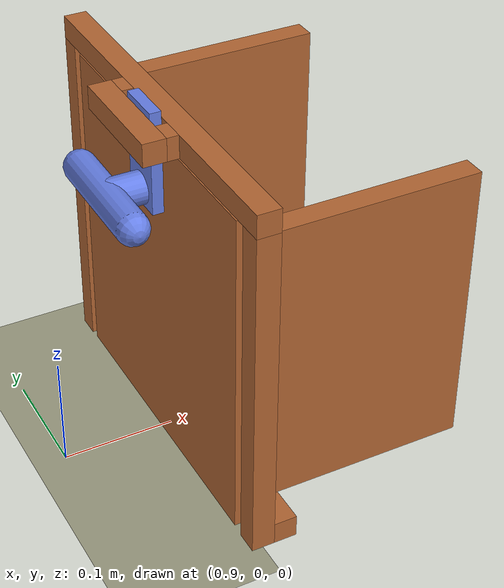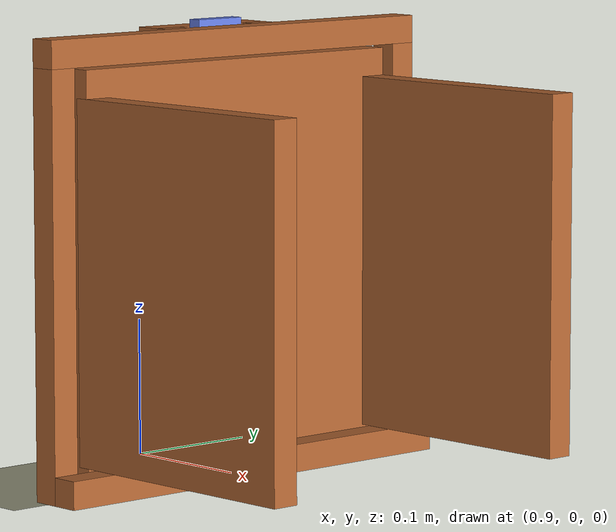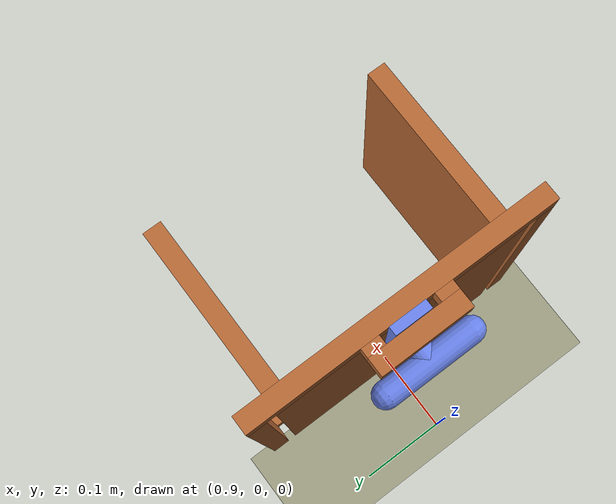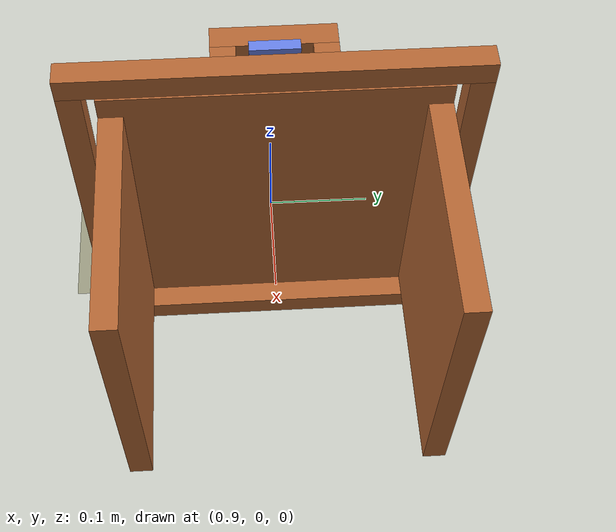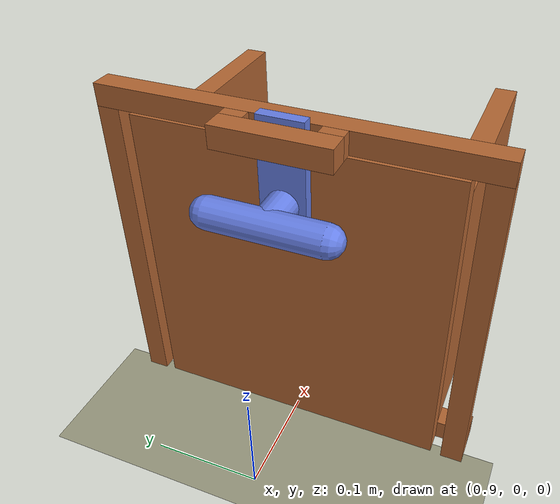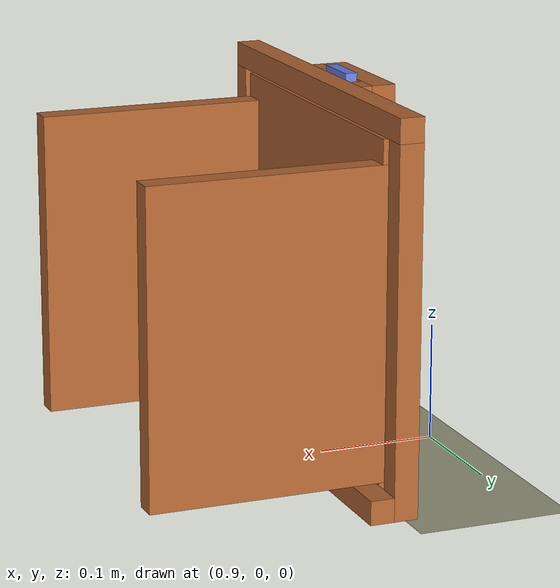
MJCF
<mujoco model='sawyer'>
    <compiler angle='radian' coordinate='local' />
	<option collision='all' impratio='5' cone='elliptic' timestep='0.001' gravity='0 0 -9.8' viscosity='0' iterations='20' />
    <size njmax='1500' nconmax='300' />

	<!--  ================= Visual Elements ================= /-->
	<asset>
		<material name='MatGnd' specular='.3' shininess='.3' reflectance='0.3' rgba='.5 .55 .5 1'/>
	</asset>

	<!--  ================= Physical Properties ================= /-->
	<default>
		<geom solref='0.01 1' solimp='0.95 0.95 0.01' condim='4'/>

		<default class='table'>
			<geom material='MatGnd' rgba='.6 .6 .5 1' solref='0.01 1' solimp='0.95 0.98 0.001' contype='1' condim='1' conaffinity='1' />
		</default>

		<default class='obstacle'>
			<geom material='MatGnd' rgba='.7 .4 .2 1' solref='0.01 1' solimp='0.95 0.98 0.001' contype='1' condim='1' conaffinity='1' />
		</default>

		<default class='object'>
			<geom rgba='0.4 0.5 0.9 1' solmix='0' density='400'/>
		</default>
	</default>

	<!--  ================= Kinematic Tree ================= /-->
    <worldbody>
		<light directional='true' cutoff='40' exponent='10' diffuse='.4 .4 .4' specular='.7 .7 .7' pos='0.9 0 1.5' dir='0 0 -1'/>

		<!--  ================= Table ================= /-->
		<geom name='tableTop' material='MatGnd' type='plane' pos='0.6 0 0' size='0.4 0.6 0.5' class='table'/>

		<body name='shift'>
			<!--  ================= Obstacle ================= /-->
			<body name='frame' pos='1 0 0' quat='1 0 0 0'>
				<geom type='box' class='obstacle' size='0.01 0.01 0.15' pos='0 0.16 0.15'/>
				<geom type='box' class='obstacle' size='0.01 0.01 0.15' pos='0 -0.16 0.15'/>
				<geom type='box' class='obstacle' size='0.01 0.17 0.01' pos='0 0 0.31'/>
				<geom type='box' class='obstacle' size='0.01 0.17 0.01' pos='0.02 0 0.01'/>
				<geom type='box' class='obstacle' size='0.01 0.05 0.01' pos='-0.03 0 0.31'/>
				<geom type='box' class='obstacle' size='0.005 0.01 0.01' pos='-0.015 0.04 0.31'/>
				<geom type='box' class='obstacle' size='0.005 0.01 0.01' pos='-0.015 -0.04 0.31'/>
				<body name='door' pos='0 0 0' quat='1 0 0 0'>
					<joint type='slide' pos='0 0 0' axis='1 0 0' />
					<geom type='box' class='obstacle' size='0.01 0.14 0.148' pos='0 0 0.15' />
					<geom type='box' class='obstacle' size='0.1 0.01 0.128' pos='0.1 0.13 0.15' />
					<geom type='box' class='obstacle' size='0.1 0.01 0.128' pos='0.1 -0.13 0.15' />

					<!--  ================= Object ================= /-->
					<body name='object' pos='0 0 0.25' quat='1 0 0 0'>
						<joint type='slide' axis='0 0 1' range='-0.05 0' springdamper='0.008 3' limited='true'/>
						<geom type='cylinder' size='0.014' fromto='0 0 0 -0.05 0 0' class='object' />
						<geom name='bolt' type='box' size='0.0049 0.02 0.045' pos='-0.015 0 0.03' class='object' />
						<geom type='capsule' size='0.014' fromto='-0.05 -0.05 0 -0.05 0.05 0' class='object' />
					</body>
				</body>
			</body>
		</body>
    </worldbody>

	<!--  ================= Sensors ================= /-->
	<sensor>
		<framepos name='obj_p' objtype='body' objname='object' />
		<framequat name='obj_r' objtype='body' objname='object' />
	</sensor>
</mujoco>
